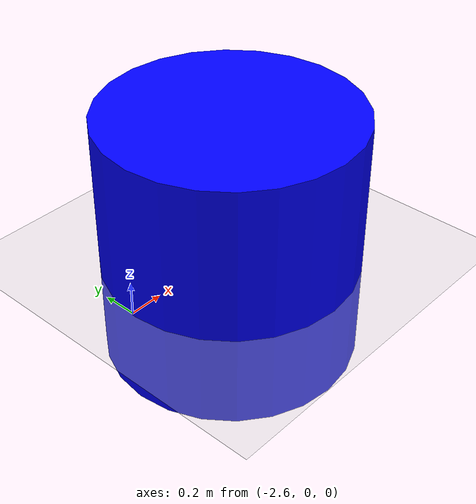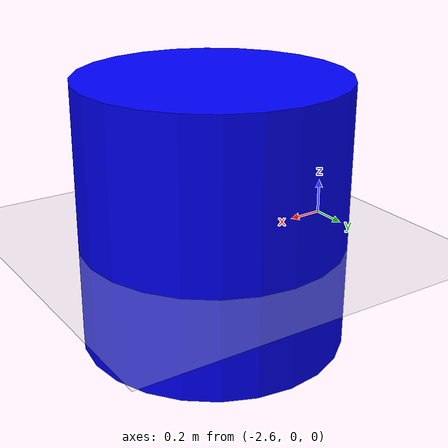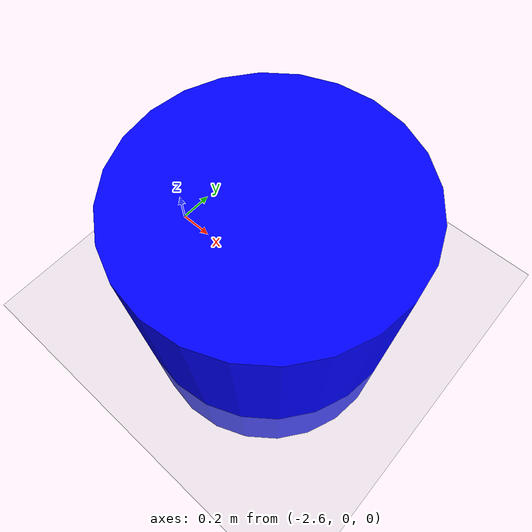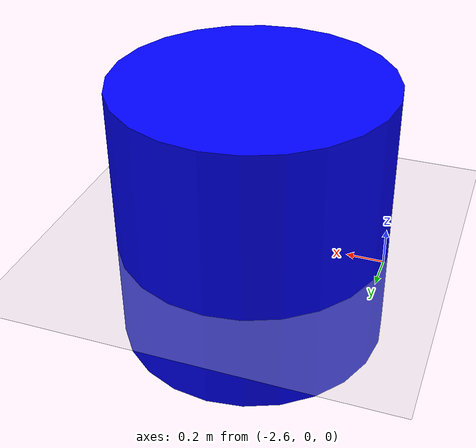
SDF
<sdf version="1.4">
  <world name="default">

    <!-- Global world -->
    <include>
      <uri>model://ground_plane</uri>
    </include>

    <!-- Global light source -->
    <include>
      <uri>model://sun</uri>
    </include>

    <physics type="ode">
      <real_time_update_rate>1000.0</real_time_update_rate>
      <max_step_size>0.001</max_step_size>
      <real_time_factor>1</real_time_factor>
      <ode>
        <solver>
          <type>quick</type>
          <iters>150</iters>
          <precon_iters>0</precon_iters>
          <sor>1.400000</sor>
          <use_dynamic_moi_rescaling>1</use_dynamic_moi_rescaling>
        </solver>
        <constraints>
          <cfm>0.00001</cfm>
          <erp>0.2</erp>
          <contact_max_correcting_vel>2000.000000</contact_max_correcting_vel>
          <contact_surface_layer>0.01000</contact_surface_layer>
        </constraints>
      </ode>
    </physics>

     <!-- carrega base -->
    <include>
      <uri>model://mesa/base</uri>
      <pose> -1.91 0 0.0 0 0 0</pose>
    </include>

     <!-- carrega cilindro_vermelho -->
    <include>
      <uri>model://mesa/cilindro_vermelho</uri>
      <pose> -1.87 0.232 0.167 0 0 0</pose>
    </include>

     <!-- carrega cilindro_azul -->
    <include>
      <uri>model://mesa/cilindro_azul</uri>
      <pose> -1.86 -0.03 0.167 0 0 0</pose>
    </include>

     <!-- carrega cilindro_verde -->
    <include>
      <uri>model://mesa/cilindro_verde</uri>
      <pose> -1.86 -0.244 0.167 0 0 0</pose>
    </include>

    <scene>
      <ambient>0.4 0.4 0.4 1</ambient>
      <background>0.7 0.7 0.7 1</background>
      <shadows>true</shadows>
    </scene>

    <gui fullscreen='0'>
      <camera name='user_camera'>
        <pose>0.8 2.0 12.0 0 1.5708 1.5708</pose>
        <view_controller>orbit</view_controller>
      </camera>
    </gui>

  </world>
</sdf>

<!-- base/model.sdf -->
<sdf version='1.6'>
  <model name='base'>
    <link name='link_0'>
      <inertial>
        <mass>0.03</mass>
        <inertia>
          <ixx>0.004375</ixx>
          <ixy>0</ixy>
          <ixz>0</ixz>
          <iyy>0.004375</iyy>
          <iyz>0</iyz>
          <izz>0.00375</izz>
        </inertia>
        <pose frame=''>0 0 0 0 -0 0</pose>
      </inertial>
      <pose frame=''>0.003805 -0.001087 -0.087331 0 -0 0</pose>
      <gravity>1</gravity>
      <self_collide>0</self_collide>
      <kinematic>0</kinematic>
      <enable_wind>0</enable_wind>
      <visual name='visual'>
        <pose frame=''>0 0 0 0 -0 0</pose>
        <geometry>
          <cylinder>
            <radius>0.1</radius>
            <length>0.1</length>
          </cylinder>
        </geometry>
      </visual>
      <collision name='collision'>
        <laser_retro>0</laser_retro>
        <max_contacts>10</max_contacts>
        <pose frame=''>0 0 0 0 -0 0</pose>
        <geometry>
          <cylinder>
            <radius>0.1</radius>
            <length>0.1</length>
          </cylinder>
        </geometry>
        <surface>
          <friction>
            <ode>
              <mu>1</mu>
              <mu2>1</mu2>
              <fdir1>0 0 0</fdir1>
              <slip1>0</slip1>
              <slip2>0</slip2>
            </ode>
            <torsional>
              <coefficient>1</coefficient>
              <patch_radius>0</patch_radius>
              <surface_radius>0</surface_radius>
              <use_patch_radius>1</use_patch_radius>
              <ode>
                <slip>0</slip>
              </ode>
            </torsional>
          </friction>
          <bounce>
            <restitution_coefficient>0</restitution_coefficient>
            <threshold>1e+06</threshold>
          </bounce>
          <contact>
            <collide_without_contact>0</collide_without_contact>
            <collide_without_contact_bitmask>1</collide_without_contact_bitmask>
            <collide_bitmask>1</collide_bitmask>
            <ode>
              <soft_cfm>0</soft_cfm>
              <soft_erp>0.2</soft_erp>
              <kp>1e+13</kp>
              <kd>1</kd>
              <max_vel>0.01</max_vel>
              <min_depth>0</min_depth>
            </ode>
            <bullet>
              <split_impulse>1</split_impulse>
              <split_impulse_penetration_threshold>-0.01</split_impulse_penetration_threshold>
              <soft_cfm>0</soft_cfm>
              <soft_erp>0.2</soft_erp>
              <kp>1e+13</kp>
              <kd>1</kd>
            </bullet>
          </contact>
        </surface>
      </collision>
    </link>

</model>

</sdf>

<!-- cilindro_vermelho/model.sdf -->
<sdf version='1.7'>
  <model name='cilindro_vermelho'>
    <link name='link_0'>
      <inertial>
        <mass>0.00018493</mass>
        <inertia>
          <ixx>4.1e-07</ixx>
          <ixy>0</ixy>
          <ixz>0</ixz>
          <iyy>4.1e-07</iyy>
          <iyz>0</iyz>
          <izz>3e-08</izz>
        </inertia>
        <pose>0 0 0 0 -0 0</pose>
      </inertial>
      <pose>0 0 0 0 -0 0</pose>
      <gravity>1</gravity>
      <self_collide>0</self_collide>
      <kinematic>0</kinematic>
      <enable_wind>0</enable_wind>
      <visual name='visual'>
        <pose>0 0 0 0 -0 0</pose>
        <geometry>
          <cylinder>
            <radius>0.0171725</radius>
            <length>0.159571</length>
          </cylinder>
        </geometry>
        <material>
          <lighting>1</lighting>
          <script>
            <uri>file://media/materials/scripts/gazebo.material</uri>
            <name>Gazebo/Grey</name>
          </script>
          <shader type='pixel'>
            <normal_map>__default__</normal_map>
          </shader>
          <ambient>1 0 0 0</ambient>
          <diffuse>1 0 0 1</diffuse>
          <specular>1 0 0 1</specular>
          <emissive>0 0 0 1</emissive>
        </material>
        <transparency>0</transparency>
        <cast_shadows>1</cast_shadows>
      </visual>
      <collision name='collision'>
        <laser_retro>0</laser_retro>
        <max_contacts>10</max_contacts>
        <pose>0 0 0 0 -0 0</pose>
        <geometry>
          <cylinder>
            <radius>0.017173</radius>
            <length>0.159571</length>
          </cylinder>
        </geometry>
        <surface>
          <friction>
            <ode>
              <mu>1</mu>
              <mu2>1</mu2>
              <fdir1>0 0 0</fdir1>
              <slip1>0</slip1>
              <slip2>0</slip2>
            </ode>
            <torsional>
              <coefficient>1</coefficient>
              <patch_radius>0</patch_radius>
              <surface_radius>0</surface_radius>
              <use_patch_radius>1</use_patch_radius>
              <ode>
                <slip>0</slip>
              </ode>
            </torsional>
          </friction>
          <bounce>
            <restitution_coefficient>0</restitution_coefficient>
            <threshold>1e+06</threshold>
          </bounce>
          <contact>
            <collide_without_contact>0</collide_without_contact>
            <collide_without_contact_bitmask>1</collide_without_contact_bitmask>
            <collide_bitmask>1</collide_bitmask>
            <ode>
              <soft_cfm>0</soft_cfm>
              <soft_erp>0.2</soft_erp>
              <kp>1e+13</kp>
              <kd>1</kd>
              <max_vel>0.01</max_vel>
              <min_depth>0</min_depth>
            </ode>
            <bullet>
              <split_impulse>1</split_impulse>
              <split_impulse_penetration_threshold>-0.01</split_impulse_penetration_threshold>
              <soft_cfm>0</soft_cfm>
              <soft_erp>0.2</soft_erp>
              <kp>1e+13</kp>
              <kd>1</kd>
            </bullet>
          </contact>
        </surface>
      </collision>
    </link>
    <link name='link_0_0_clone_0'>
      <inertial>
        <mass>0.00012262</mass>
        <inertia>
          <ixx>6e-08</ixx>
          <ixy>0</ixy>
          <ixz>0</ixz>
          <iyy>5e-08</iyy>
          <iyz>0</iyz>
          <izz>1e-07</izz>
        </inertia>
        <pose>0 0 0 0 -0 0</pose>
      </inertial>
      <pose>-0 0 0.065842 0 -0 0</pose>
      <gravity>1</gravity>
      <self_collide>0</self_collide>
      <kinematic>0</kinematic>
      <enable_wind>0</enable_wind>
      <visual name='visual_0'>
        <pose>0 0 0 0 -0 0</pose>
        <geometry>
          <box>
            <size>0.06472 0.075173 0.025188</size>
          </box>
        </geometry>
        <material>
          <lighting>1</lighting>
          <script>
            <uri>file://media/materials/scripts/gazebo.material</uri>
            <name>Gazebo/Grey</name>
          </script>
          <shader type='pixel'>
            <normal_map>__default__</normal_map>
          </shader>
          <ambient>1 0 0 0</ambient>
          <diffuse>1 0 0 1</diffuse>
          <specular>1 0 0 1</specular>
          <emissive>0 0 0 1</emissive>
        </material>
        <transparency>0</transparency>
        <cast_shadows>1</cast_shadows>
      </visual>
      <collision name='collision'>
        <laser_retro>0</laser_retro>
        <max_contacts>10</max_contacts>
        <pose>0 0 0 0 -0 0</pose>
        <geometry>
          <box>
            <size>0.06472 0.075173 0.025188</size>
          </box>
        </geometry>
        <surface>
          <friction>
            <ode>
              <mu>1</mu>
              <mu2>1</mu2>
              <fdir1>0 0 0</fdir1>
              <slip1>0</slip1>
              <slip2>0</slip2>
            </ode>
            <torsional>
              <coefficient>1</coefficient>
              <patch_radius>0</patch_radius>
              <surface_radius>0</surface_radius>
              <use_patch_radius>1</use_patch_radius>
              <ode>
                <slip>0</slip>
              </ode>
            </torsional>
          </friction>
          <bounce>
            <restitution_coefficient>0</restitution_coefficient>
            <threshold>1e+06</threshold>
          </bounce>
          <contact>
            <collide_without_contact>0</collide_without_contact>
            <collide_without_contact_bitmask>1</collide_without_contact_bitmask>
            <collide_bitmask>1</collide_bitmask>
            <ode>
              <soft_cfm>0</soft_cfm>
              <soft_erp>0.2</soft_erp>
              <kp>1e+13</kp>
              <kd>1</kd>
              <max_vel>0.01</max_vel>
              <min_depth>0</min_depth>
            </ode>
            <bullet>
              <split_impulse>1</split_impulse>
              <split_impulse_penetration_threshold>-0.01</split_impulse_penetration_threshold>
              <soft_cfm>0</soft_cfm>
              <soft_erp>0.2</soft_erp>
              <kp>1e+13</kp>
              <kd>1</kd>
            </bullet>
          </contact>
        </surface>
      </collision>
    </link>
    <joint name='link_0_0_clone_0_JOINT_3' type='fixed'>
      <parent>link_0_0_clone_0</parent>
      <child>link_0</child>
      <pose>0 0 0 0 -0 0</pose>
      <physics>
        <ode>
          <limit>
            <cfm>0</cfm>
            <erp>0.2</erp>
          </limit>
          <suspension>
            <cfm>0</cfm>
            <erp>0.2</erp>
          </suspension>
        </ode>
      </physics>
    </joint>
    <static>0</static>
    <allow_auto_disable>1</allow_auto_disable>
  </model>
</sdf>

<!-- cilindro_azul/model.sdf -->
<sdf version='1.6'>
  <model name='cilindro_azul'>
    <link name='link'>
      <inertial>
        <mass>1</mass>
        <inertia>
          <ixx>0.145833</ixx>
          <ixy>0</ixy>
          <ixz>0</ixz>
          <iyy>0.145833</iyy>
          <iyz>0</iyz>
          <izz>0.125</izz>
        </inertia>
        <pose frame=''>0 0 0 0 -0 0</pose>
      </inertial>
      <self_collide>0</self_collide>
      <enable_wind>0</enable_wind>
      <kinematic>0</kinematic>
      <pose frame=''>0 0 0 0 -0 0</pose>
      <gravity>1</gravity>
      <visual name='visual'>
        <geometry>
          <cylinder>
            <radius>0.75</radius>
            <length>1.5</length>
          </cylinder>
        </geometry>
        <material>
          <script>
            <name>Gazebo/Grey</name>
            <uri>file://media/materials/scripts/gazebo.material</uri>
          </script>
          <shader type='vertex'>
            <normal_map>__default__</normal_map>
          </shader>
          <ambient>0 0 1 1</ambient>
          <diffuse>0 0 1 1</diffuse>
          <specular>0 0 1 1</specular>
          <emissive>0 0 0 1</emissive>
        </material>
        <pose frame=''>0 0 0 0 -0 0</pose>
        <transparency>0</transparency>
        <cast_shadows>1</cast_shadows>
      </visual>
      <collision name='collision'>
        <laser_retro>0</laser_retro>
        <max_contacts>10</max_contacts>
        <pose frame=''>0 0 0 0 -0 0</pose>
        <geometry>
          <cylinder>
            <radius>0.75</radius>
            <length>1.5</length>
          </cylinder>
        </geometry>
        <surface>
          <friction>
            <ode>
              <mu>1</mu>
              <mu2>1</mu2>
              <fdir1>0 0 0</fdir1>
              <slip1>0</slip1>
              <slip2>0</slip2>
            </ode>
            <torsional>
              <coefficient>1</coefficient>
              <patch_radius>0</patch_radius>
              <surface_radius>0</surface_radius>
              <use_patch_radius>1</use_patch_radius>
              <ode>
                <slip>0</slip>
              </ode>
            </torsional>
          </friction>
          <bounce>
            <restitution_coefficient>0</restitution_coefficient>
            <threshold>1e+06</threshold>
          </bounce>
          <contact>
            <collide_without_contact>0</collide_without_contact>
            <collide_without_contact_bitmask>1</collide_without_contact_bitmask>
            <collide_bitmask>1</collide_bitmask>
            <ode>
              <soft_cfm>0</soft_cfm>
              <soft_erp>0.2</soft_erp>
              <kp>1e+13</kp>
              <kd>1</kd>
              <max_vel>0.01</max_vel>
              <min_depth>0</min_depth>
            </ode>
            <bullet>
              <split_impulse>1</split_impulse>
              <split_impulse_penetration_threshold>-0.01</split_impulse_penetration_threshold>
              <soft_cfm>0</soft_cfm>
              <soft_erp>0.2</soft_erp>
              <kp>1e+13</kp>
              <kd>1</kd>
            </bullet>
          </contact>
        </surface>
      </collision>
    </link>
    <static>0</static>
    <allow_auto_disable>1</allow_auto_disable>
  </model>
</sdf>

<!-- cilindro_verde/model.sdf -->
<sdf version='1.7'>
  <model name='cilindro_verde'>
    <link name='link_0_0_clone'>
      <inertial>
        <mass>0.00012262</mass>
        <inertia>
          <ixx>6e-08</ixx>
          <ixy>0</ixy>
          <ixz>0</ixz>
          <iyy>5e-08</iyy>
          <iyz>0</iyz>
          <izz>1e-07</izz>
        </inertia>
        <pose>0 0 0 0 -0 0</pose>
      </inertial>
      <pose>0 -0 0.062752 0 -0 0</pose>
      <gravity>1</gravity>
      <self_collide>0</self_collide>
      <kinematic>0</kinematic>
      <enable_wind>0</enable_wind>
      <visual name='visual_0'>
        <pose>0 0 0 0 -0 0</pose>
        <geometry>
          <box>
            <size>0.06472 0.075173 0.025188</size>
          </box>
        </geometry>
        <material>
          <lighting>1</lighting>
          <script>
            <uri>file://media/materials/scripts/gazebo.material</uri>
            <name>Gazebo/Grey</name>
          </script>
          <shader type='pixel'>
            <normal_map>__default__</normal_map>
          </shader>
          <ambient>0 1 0 0</ambient>
          <diffuse>0 1 0 1</diffuse>
          <specular>0 1 0 1</specular>
          <emissive>0 0 0 1</emissive>
        </material>
        <transparency>0</transparency>
        <cast_shadows>1</cast_shadows>
      </visual>
      <collision name='collision'>
        <laser_retro>0</laser_retro>
        <max_contacts>10</max_contacts>
        <pose>0 0 0 0 -0 0</pose>
        <geometry>
          <box>
            <size>0.06472 0.075173 0.025188</size>
          </box>
        </geometry>
        <surface>
          <friction>
            <ode>
              <mu>1</mu>
              <mu2>1</mu2>
              <fdir1>0 0 0</fdir1>
              <slip1>0</slip1>
              <slip2>0</slip2>
            </ode>
            <torsional>
              <coefficient>1</coefficient>
              <patch_radius>0</patch_radius>
              <surface_radius>0</surface_radius>
              <use_patch_radius>1</use_patch_radius>
              <ode>
                <slip>0</slip>
              </ode>
            </torsional>
          </friction>
          <bounce>
            <restitution_coefficient>0</restitution_coefficient>
            <threshold>1e+06</threshold>
          </bounce>
          <contact>
            <collide_without_contact>0</collide_without_contact>
            <collide_without_contact_bitmask>1</collide_without_contact_bitmask>
            <collide_bitmask>1</collide_bitmask>
            <ode>
              <soft_cfm>0</soft_cfm>
              <soft_erp>0.2</soft_erp>
              <kp>1e+13</kp>
              <kd>1</kd>
              <max_vel>0.01</max_vel>
              <min_depth>0</min_depth>
            </ode>
            <bullet>
              <split_impulse>1</split_impulse>
              <split_impulse_penetration_threshold>-0.01</split_impulse_penetration_threshold>
              <soft_cfm>0</soft_cfm>
              <soft_erp>0.2</soft_erp>
              <kp>1e+13</kp>
              <kd>1</kd>
            </bullet>
          </contact>
        </surface>
      </collision>
    </link>
    <link name='link_0_clone'>
      <inertial>
        <mass>0.000209024</mass>
        <inertia>
          <ixx>4.6059e-07</ixx>
          <ixy>0</ixy>
          <ixz>0</ixz>
          <iyy>4.6059e-07</iyy>
          <iyz>0</iyz>
          <izz>3.41198e-08</izz>
        </inertia>
        <pose>0 0 0 0 -0 0</pose>
      </inertial>
      <pose>0 0 0 0 -0 0</pose>
      <gravity>1</gravity>
      <self_collide>0</self_collide>
      <kinematic>0</kinematic>
      <enable_wind>0</enable_wind>
      <visual name='visual'>
        <pose>0 0 0 0 -0 0</pose>
        <geometry>
          <cylinder>
            <radius>0.0180686</radius>
            <length>0.159571</length>
          </cylinder>
        </geometry>
        <material>
          <lighting>1</lighting>
          <script>
            <uri>file://media/materials/scripts/gazebo.material</uri>
            <name>Gazebo/Grey</name>
          </script>
          <shader type='pixel'>
            <normal_map>__default__</normal_map>
          </shader>
          <ambient>0 1 0 1</ambient>
          <diffuse>0 1 0 1</diffuse>
          <specular>0 1 0 1</specular>
          <emissive>0 0 0 1</emissive>
        </material>
        <transparency>0</transparency>
        <cast_shadows>1</cast_shadows>
      </visual>
      <collision name='collision'>
        <laser_retro>0</laser_retro>
        <max_contacts>10</max_contacts>
        <pose>0 0 0 0 -0 0</pose>
        <geometry>
          <cylinder>
            <radius>0.018068</radius>
            <length>0.159571</length>
          </cylinder>
        </geometry>
        <surface>
          <friction>
            <ode>
              <mu>1</mu>
              <mu2>1</mu2>
              <fdir1>0 0 0</fdir1>
              <slip1>0</slip1>
              <slip2>0</slip2>
            </ode>
            <torsional>
              <coefficient>1</coefficient>
              <patch_radius>0</patch_radius>
              <surface_radius>0</surface_radius>
              <use_patch_radius>1</use_patch_radius>
              <ode>
                <slip>0</slip>
              </ode>
            </torsional>
          </friction>
          <bounce>
            <restitution_coefficient>0</restitution_coefficient>
            <threshold>1e+06</threshold>
          </bounce>
          <contact>
            <collide_without_contact>0</collide_without_contact>
            <collide_without_contact_bitmask>1</collide_without_contact_bitmask>
            <collide_bitmask>1</collide_bitmask>
            <ode>
              <soft_cfm>0</soft_cfm>
              <soft_erp>0.2</soft_erp>
              <kp>1e+13</kp>
              <kd>1</kd>
              <max_vel>0.01</max_vel>
              <min_depth>0</min_depth>
            </ode>
            <bullet>
              <split_impulse>1</split_impulse>
              <split_impulse_penetration_threshold>-0.01</split_impulse_penetration_threshold>
              <soft_cfm>0</soft_cfm>
              <soft_erp>0.2</soft_erp>
              <kp>1e+13</kp>
              <kd>1</kd>
            </bullet>
          </contact>
        </surface>
      </collision>
    </link>
    <joint name='link_0_0_clone_JOINT_2' type='fixed'>
      <parent>link_0_0_clone</parent>
      <child>link_0_clone</child>
      <pose>0 0 0 0 -0 0</pose>
      <physics>
        <ode>
          <limit>
            <cfm>0</cfm>
            <erp>0.2</erp>
          </limit>
          <suspension>
            <cfm>0</cfm>
            <erp>0.2</erp>
          </suspension>
        </ode>
      </physics>
    </joint>
    <static>0</static>
    <allow_auto_disable>1</allow_auto_disable>
  </model>
</sdf>
